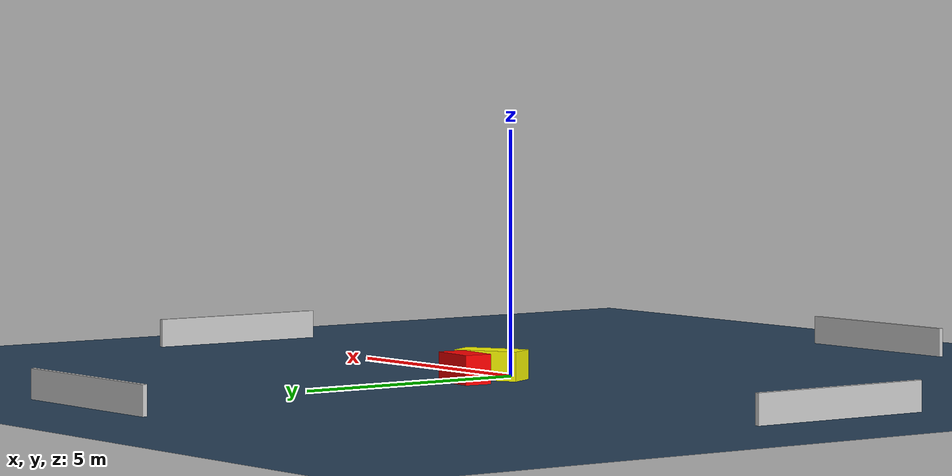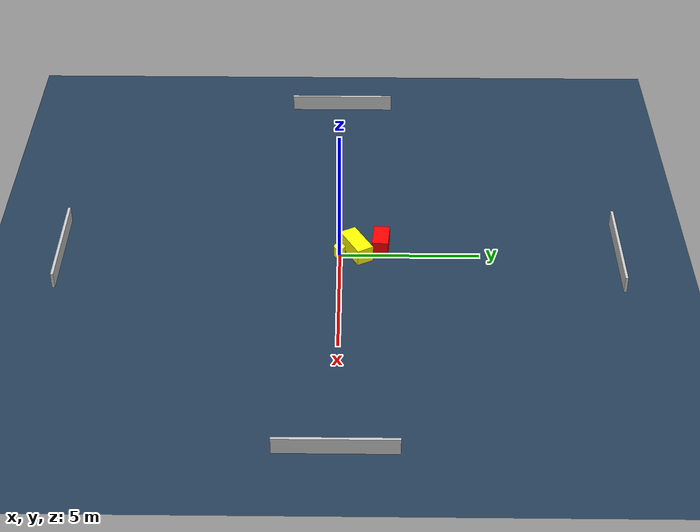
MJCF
<?xml version="1.0" ?>
<mujoco model="generated_environment">
  <option timestep="0.01" integrator="RK4" cone="elliptic"/>
  <default>
    <geom density="1"/>
  </default>
  <asset>
    <texture builtin="gradient" height="3072" name="skybox" rgb1="0.3 0.5 0.7" rgb2="0 0 0" type="skybox" width="512"/>
    <texture builtin="checker" height="300" name="groundplane" rgb1="0.2 0.3 0.4" rgb2="0.1 0.2 0.3" type="2d" width="300"/>
    <material name="groundplane" reflectance="0.2" texrepeat="5 5" texture="groundplane"/>
  </asset>
  <worldbody>
    <light dir="0 0 -1" directional="true" pos="0 0 1.5"/>
    <geom condim="3" friction="0.5 0.005 0.001" material="groundplane" name="floor" pos="0 0 0" size="0 0 0.05" type="plane"/>
    <body name="walls">
      <geom name="wall_1" condim="4" pos="-10.0 0.0 0.3" rgba="0.800000011920929 0.800000011920929 0.800000011920929 1.0" size="0.05 2.0 0.3" type="box"/>
      <geom name="wall_2" condim="4" pos="10.0 0.0 0.3" rgba="0.800000011920929 0.800000011920929 0.800000011920929 1.0" size="0.05 2.0 0.3" type="box"/>
      <geom name="wall_3" condim="4" pos="0.0 -10.0 0.3" rgba="0.800000011920929 0.800000011920929 0.800000011920929 1.0" size="2.0 0.05 0.3" type="box"/>
      <geom name="wall_4" condim="4" pos="0.0 10.0 0.3" rgba="0.800000011920929 0.800000011920929 0.800000011920929 1.0" size="2.0 0.05 0.3" type="box"/>
    </body>
    <body name="robot">
      <joint name="joint_x" type="slide" pos="0 0 0" axis="1 0 0"/>
      <joint name="joint_y" type="slide" pos="0 0 0" axis="0 1 0"/>
      <geom name="robot" type="cylinder" pos="0.0 0.0 0.2" size="0.2 0.2 0.0" mass="5.0" friction="1.0 0.005 0.0001" condim="4" rgba="1.0 1.0 0.0 1.0"/>
    </body>
    <body name="obstacle_1_movable">
      <geom name="obstacle_1_movable" condim="4" pos="-0.16056637806733123 0.6082546698136113 0.3" euler="0 0 118.57518316655575" friction="0.0 0.005 0.001" rgba="1.0 1.0 0.0 1.0" size="0.3126662159593999 0.6800499771685007 0.3" type="box" mass="0.1"/>
      <joint type="free"/>
    </body>
    <body name="obstacle_2_static">
      <geom name="obstacle_2_static" condim="4" pos="-0.4385895876605744 1.488349992737249 0.3" euler="0 0 265.32921521470917" friction="0.0 0.005 0.001" rgba="1.0 0.0 0.0 1.0" size="0.2914583607273258 0.5159579709667546 0.3" type="box"/>
    </body>
  </worldbody>
  <actuator>
    <motor name="actuator_x" joint="joint_x" gear="1" ctrlrange="-1 1"/>
    <motor name="actuator_y" joint="joint_y" gear="1" ctrlrange="-1 1"/>
  </actuator>
</mujoco>
